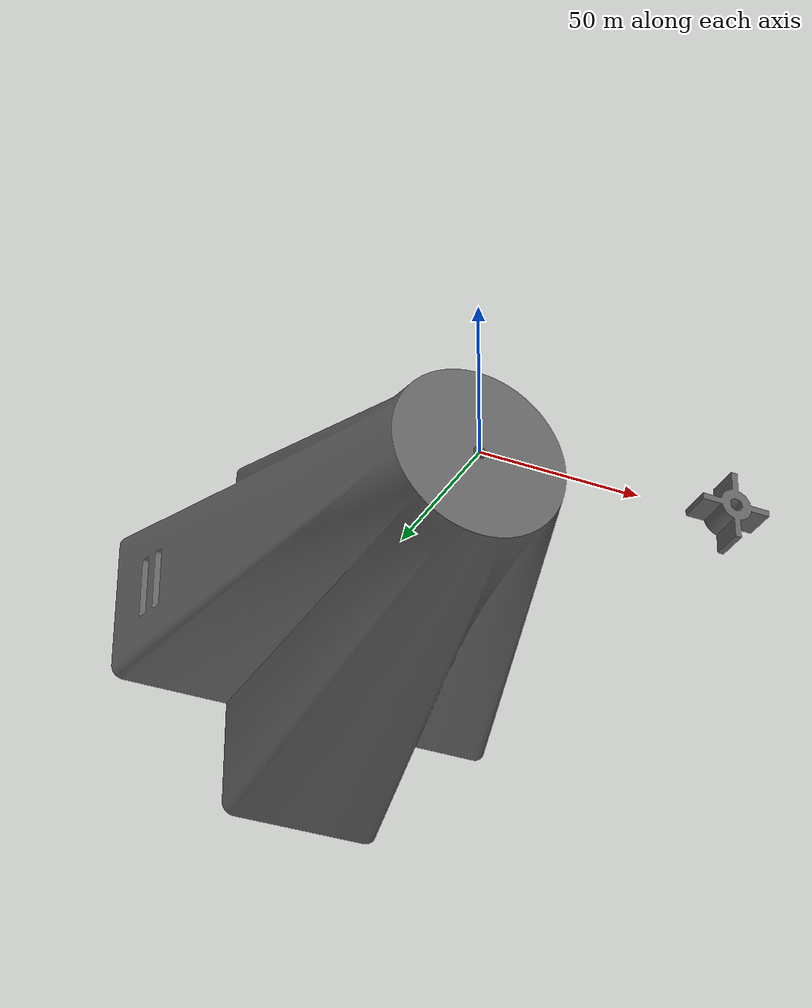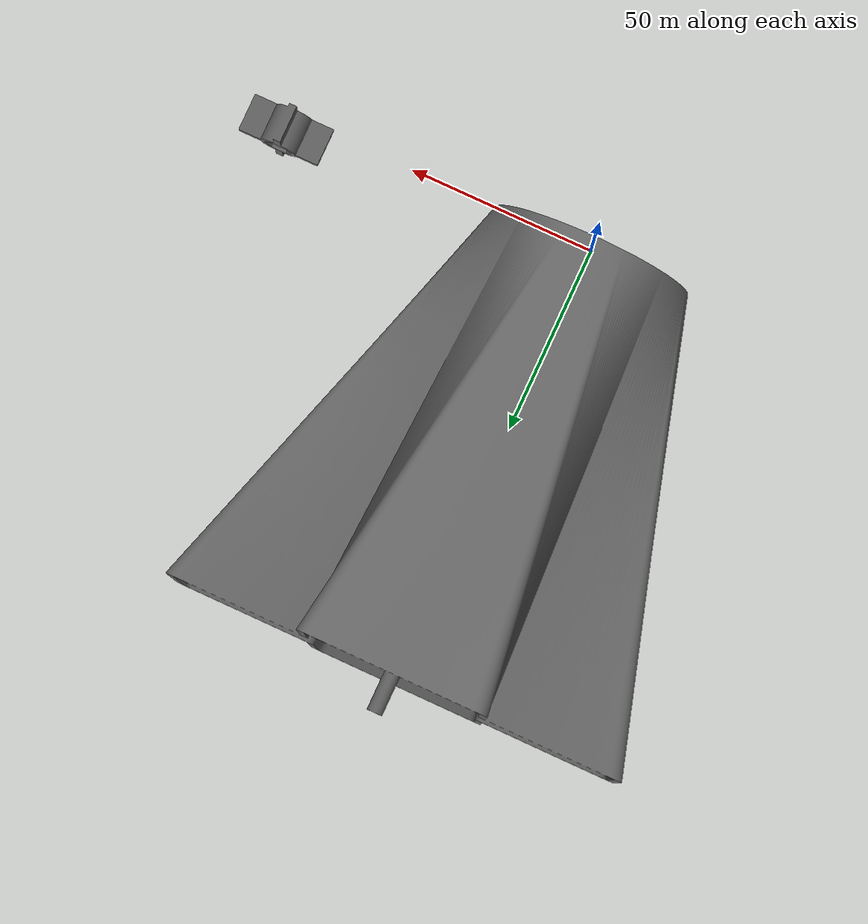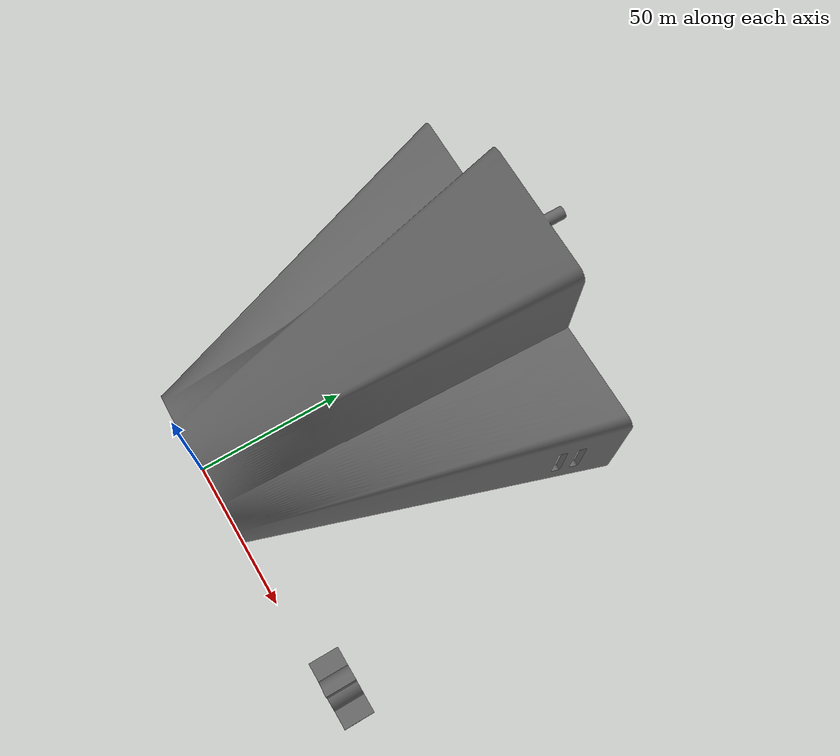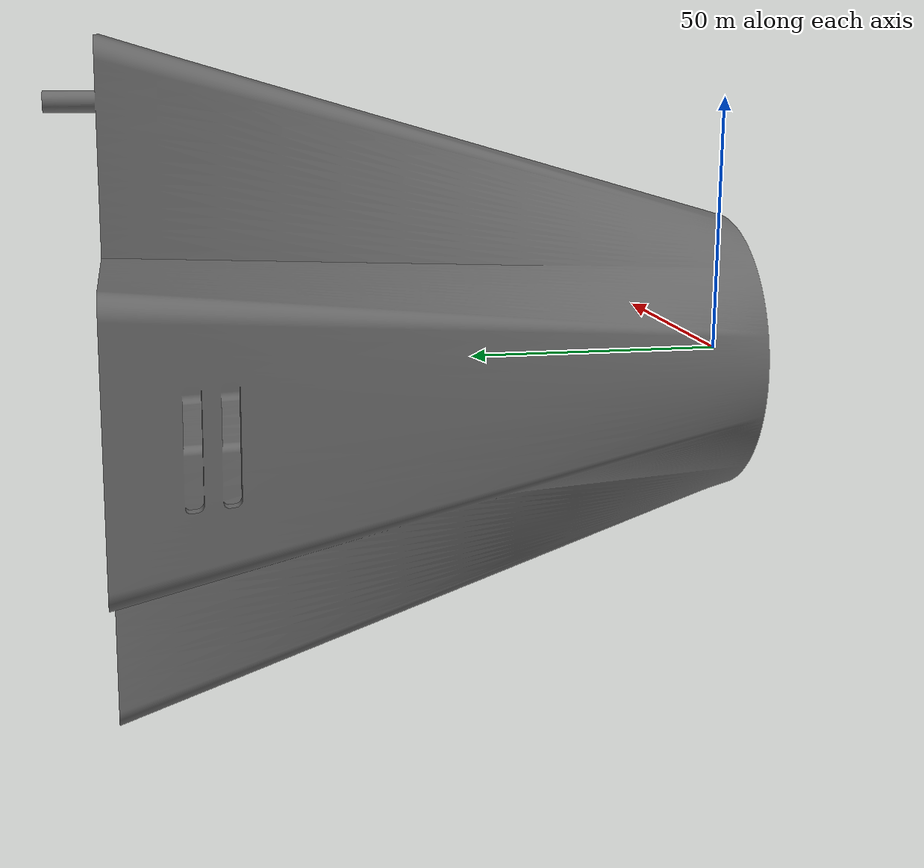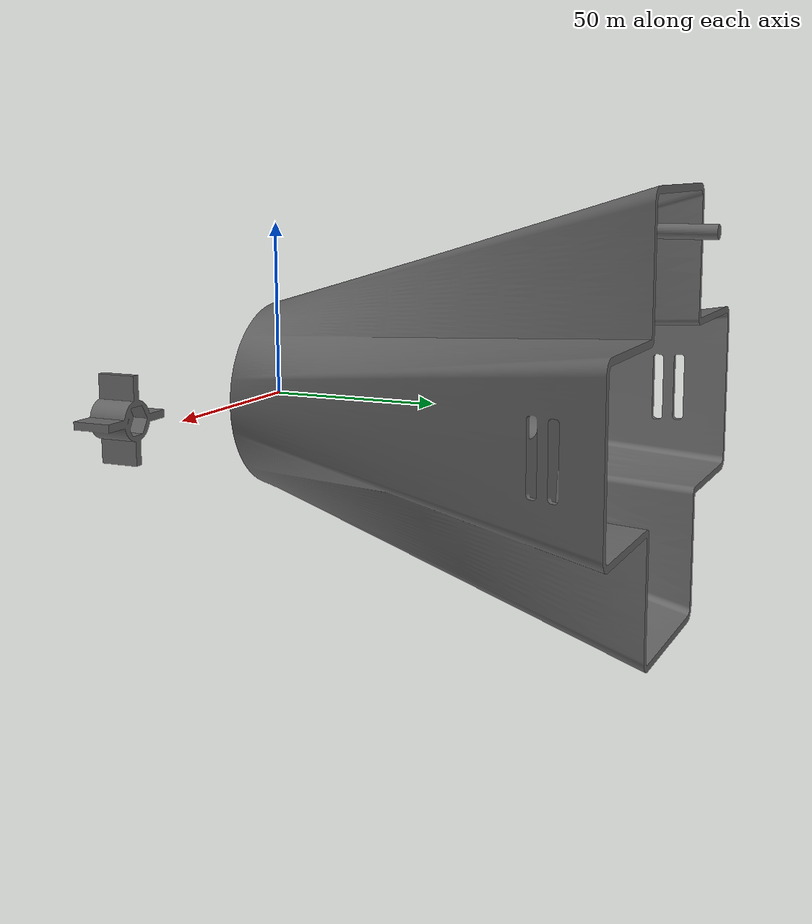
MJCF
<mujoco model="d8563064e64d45459b86281613ea4732">
  <default>
    <default class="visual">
      <geom group="2" type="mesh" contype="0" conaffinity="0"/>
    </default>
    <default class="collision">
      <geom group="3" type="mesh"/>
    </default>
  </default>
  <asset>
    <material name="Scene_-_Root" specular="0.4000000000000001" shininess="0.001" rgba="0.40000000 0.40000000 0.40000000 1.0"/>
    <mesh file="d8563064e64d45459b86281613ea4732.obj"/>
    <mesh file="d8563064e64d45459b86281613ea4732_collision_0.obj"/>
    <mesh file="d8563064e64d45459b86281613ea4732_collision_1.obj"/>
    <mesh file="d8563064e64d45459b86281613ea4732_collision_2.obj"/>
    <mesh file="d8563064e64d45459b86281613ea4732_collision_3.obj"/>
    <mesh file="d8563064e64d45459b86281613ea4732_collision_4.obj"/>
    <mesh file="d8563064e64d45459b86281613ea4732_collision_5.obj"/>
    <mesh file="d8563064e64d45459b86281613ea4732_collision_6.obj"/>
    <mesh file="d8563064e64d45459b86281613ea4732_collision_7.obj"/>
    <mesh file="d8563064e64d45459b86281613ea4732_collision_8.obj"/>
    <mesh file="d8563064e64d45459b86281613ea4732_collision_9.obj"/>
    <mesh file="d8563064e64d45459b86281613ea4732_collision_10.obj"/>
    <mesh file="d8563064e64d45459b86281613ea4732_collision_11.obj"/>
    <mesh file="d8563064e64d45459b86281613ea4732_collision_12.obj"/>
    <mesh file="d8563064e64d45459b86281613ea4732_collision_13.obj"/>
    <mesh file="d8563064e64d45459b86281613ea4732_collision_14.obj"/>
    <mesh file="d8563064e64d45459b86281613ea4732_collision_15.obj"/>
    <mesh file="d8563064e64d45459b86281613ea4732_collision_16.obj"/>
    <mesh file="d8563064e64d45459b86281613ea4732_collision_17.obj"/>
    <mesh file="d8563064e64d45459b86281613ea4732_collision_18.obj"/>
    <mesh file="d8563064e64d45459b86281613ea4732_collision_19.obj"/>
    <mesh file="d8563064e64d45459b86281613ea4732_collision_20.obj"/>
    <mesh file="d8563064e64d45459b86281613ea4732_collision_21.obj"/>
    <mesh file="d8563064e64d45459b86281613ea4732_collision_22.obj"/>
    <mesh file="d8563064e64d45459b86281613ea4732_collision_23.obj"/>
    <mesh file="d8563064e64d45459b86281613ea4732_collision_24.obj"/>
    <mesh file="d8563064e64d45459b86281613ea4732_collision_25.obj"/>
    <mesh file="d8563064e64d45459b86281613ea4732_collision_26.obj"/>
    <mesh file="d8563064e64d45459b86281613ea4732_collision_27.obj"/>
    <mesh file="d8563064e64d45459b86281613ea4732_collision_28.obj"/>
    <mesh file="d8563064e64d45459b86281613ea4732_collision_29.obj"/>
    <mesh file="d8563064e64d45459b86281613ea4732_collision_30.obj"/>
    <mesh file="d8563064e64d45459b86281613ea4732_collision_31.obj"/>
    <mesh file="d8563064e64d45459b86281613ea4732_collision_32.obj"/>
    <mesh file="d8563064e64d45459b86281613ea4732_collision_33.obj"/>
    <mesh file="d8563064e64d45459b86281613ea4732_collision_34.obj"/>
    <mesh file="d8563064e64d45459b86281613ea4732_collision_35.obj"/>
    <mesh file="d8563064e64d45459b86281613ea4732_collision_36.obj"/>
    <mesh file="d8563064e64d45459b86281613ea4732_collision_37.obj"/>
    <mesh file="d8563064e64d45459b86281613ea4732_collision_38.obj"/>
    <mesh file="d8563064e64d45459b86281613ea4732_collision_39.obj"/>
    <mesh file="d8563064e64d45459b86281613ea4732_collision_40.obj"/>
    <mesh file="d8563064e64d45459b86281613ea4732_collision_41.obj"/>
    <mesh file="d8563064e64d45459b86281613ea4732_collision_42.obj"/>
    <mesh file="d8563064e64d45459b86281613ea4732_collision_43.obj"/>
    <mesh file="d8563064e64d45459b86281613ea4732_collision_44.obj"/>
  </asset>
  <worldbody>
    <body name="d8563064e64d45459b86281613ea4732">
      <freejoint/>
      <geom material="Scene_-_Root" mesh="d8563064e64d45459b86281613ea4732" class="visual"/>
      <geom mesh="d8563064e64d45459b86281613ea4732_collision_0" rgba="0.5858512195036748 0.8275308615433904 0.27318867630689825 1" class="collision"/>
      <geom mesh="d8563064e64d45459b86281613ea4732_collision_1" rgba="0.6313505828177516 0.2041789884246854 0.5107857580065333 1" class="collision"/>
      <geom mesh="d8563064e64d45459b86281613ea4732_collision_2" rgba="0.5622332344429314 0.1865418043481778 0.12830920164884707 1" class="collision"/>
      <geom mesh="d8563064e64d45459b86281613ea4732_collision_3" rgba="0.6012529625148351 0.8729558612240853 0.5016525390100853 1" class="collision"/>
      <geom mesh="d8563064e64d45459b86281613ea4732_collision_4" rgba="0.4295475871251557 0.8035506606899093 0.8208101331365336 1" class="collision"/>
      <geom mesh="d8563064e64d45459b86281613ea4732_collision_5" rgba="0.73453442912904 0.22534982462346664 0.3097208033209611 1" class="collision"/>
      <geom mesh="d8563064e64d45459b86281613ea4732_collision_6" rgba="0.08826268161229067 0.7451075463668605 0.9347916027416096 1" class="collision"/>
      <geom mesh="d8563064e64d45459b86281613ea4732_collision_7" rgba="0.9905124689456087 0.66559993979323 0.4761585514245581 1" class="collision"/>
      <geom mesh="d8563064e64d45459b86281613ea4732_collision_8" rgba="0.1332903077541755 0.3412480958936738 0.3776235396282961 1" class="collision"/>
      <geom mesh="d8563064e64d45459b86281613ea4732_collision_9" rgba="0.28596666384208835 0.6013820778166549 0.4644998863709332 1" class="collision"/>
      <geom mesh="d8563064e64d45459b86281613ea4732_collision_10" rgba="0.24925567331027965 0.9349124015349957 0.6757513461721942 1" class="collision"/>
      <geom mesh="d8563064e64d45459b86281613ea4732_collision_11" rgba="0.038388279462380326 0.9333072287162606 0.3103503019140772 1" class="collision"/>
      <geom mesh="d8563064e64d45459b86281613ea4732_collision_12" rgba="0.5238651006804826 0.866250589525182 0.25269108450021216 1" class="collision"/>
      <geom mesh="d8563064e64d45459b86281613ea4732_collision_13" rgba="0.5974890708362929 0.5652790025198028 0.9469603978278843 1" class="collision"/>
      <geom mesh="d8563064e64d45459b86281613ea4732_collision_14" rgba="0.06732752376805817 0.28831143154743877 0.8667839957793673 1" class="collision"/>
      <geom mesh="d8563064e64d45459b86281613ea4732_collision_15" rgba="0.7296622087759732 0.4964000524760094 0.7781644856169087 1" class="collision"/>
      <geom mesh="d8563064e64d45459b86281613ea4732_collision_16" rgba="0.6200082149055579 0.9659968293328977 0.594238114327771 1" class="collision"/>
      <geom mesh="d8563064e64d45459b86281613ea4732_collision_17" rgba="0.1137665278836848 0.2294859578150572 0.34887837702208 1" class="collision"/>
      <geom mesh="d8563064e64d45459b86281613ea4732_collision_18" rgba="0.2537132195113433 0.5556156239131622 0.2187339271580112 1" class="collision"/>
      <geom mesh="d8563064e64d45459b86281613ea4732_collision_19" rgba="0.9377374749398839 0.40280666884357796 0.35576486378143213 1" class="collision"/>
      <geom mesh="d8563064e64d45459b86281613ea4732_collision_20" rgba="0.5393192509329329 0.45922984858353566 0.07601496705663202 1" class="collision"/>
      <geom mesh="d8563064e64d45459b86281613ea4732_collision_21" rgba="0.7470071477265009 0.8250880729083385 0.2888243898185735 1" class="collision"/>
      <geom mesh="d8563064e64d45459b86281613ea4732_collision_22" rgba="0.7815638913088025 0.6388840815060589 0.9549623688243093 1" class="collision"/>
      <geom mesh="d8563064e64d45459b86281613ea4732_collision_23" rgba="0.8540579775844812 0.5625588707413195 0.241053443746166 1" class="collision"/>
      <geom mesh="d8563064e64d45459b86281613ea4732_collision_24" rgba="0.23132695725300711 0.13703737519262926 0.03593316534497337 1" class="collision"/>
      <geom mesh="d8563064e64d45459b86281613ea4732_collision_25" rgba="0.20573773741016255 0.11894296643837288 0.23127773613549218 1" class="collision"/>
      <geom mesh="d8563064e64d45459b86281613ea4732_collision_26" rgba="0.43391827748820866 0.765205684949288 0.7784700338032658 1" class="collision"/>
      <geom mesh="d8563064e64d45459b86281613ea4732_collision_27" rgba="0.5340840858585898 0.2649846199739012 0.6713518148265646 1" class="collision"/>
      <geom mesh="d8563064e64d45459b86281613ea4732_collision_28" rgba="0.48252848458598974 0.5877600917426501 0.5966956265223707 1" class="collision"/>
      <geom mesh="d8563064e64d45459b86281613ea4732_collision_29" rgba="0.17220422217628262 0.8072371225556705 0.20629306884569898 1" class="collision"/>
      <geom mesh="d8563064e64d45459b86281613ea4732_collision_30" rgba="0.7504855994921105 0.06794104794700373 0.5541564099491881 1" class="collision"/>
      <geom mesh="d8563064e64d45459b86281613ea4732_collision_31" rgba="0.9154580878107133 0.522951328248261 0.587596063112236 1" class="collision"/>
      <geom mesh="d8563064e64d45459b86281613ea4732_collision_32" rgba="0.8914716149621703 0.9357889496540255 0.861163718356296 1" class="collision"/>
      <geom mesh="d8563064e64d45459b86281613ea4732_collision_33" rgba="0.8106127191040619 0.7379019639921157 0.9233882474800522 1" class="collision"/>
      <geom mesh="d8563064e64d45459b86281613ea4732_collision_34" rgba="0.2949957198610138 0.6241385703649565 0.7653726376560744 1" class="collision"/>
      <geom mesh="d8563064e64d45459b86281613ea4732_collision_35" rgba="0.2773024705541086 0.9117419597005931 0.11327032524126535 1" class="collision"/>
      <geom mesh="d8563064e64d45459b86281613ea4732_collision_36" rgba="0.8810401010497828 0.401229858334023 0.9703765623748112 1" class="collision"/>
      <geom mesh="d8563064e64d45459b86281613ea4732_collision_37" rgba="0.5703832548466791 0.05991155021268624 0.4763310088208518 1" class="collision"/>
      <geom mesh="d8563064e64d45459b86281613ea4732_collision_38" rgba="0.6917771620916491 0.9883414554057709 0.17193268141376838 1" class="collision"/>
      <geom mesh="d8563064e64d45459b86281613ea4732_collision_39" rgba="0.6503703880516598 0.8324649295650756 0.35674007581000866 1" class="collision"/>
      <geom mesh="d8563064e64d45459b86281613ea4732_collision_40" rgba="0.46888584674682143 0.04483111006461338 0.321380489556619 1" class="collision"/>
      <geom mesh="d8563064e64d45459b86281613ea4732_collision_41" rgba="0.3399780328906049 0.928128895770196 0.43250804982863966 1" class="collision"/>
      <geom mesh="d8563064e64d45459b86281613ea4732_collision_42" rgba="0.04041742077915744 0.5149072250678143 0.5526780452412957 1" class="collision"/>
      <geom mesh="d8563064e64d45459b86281613ea4732_collision_43" rgba="0.7640088168679453 0.842105097187167 0.0897159414528339 1" class="collision"/>
      <geom mesh="d8563064e64d45459b86281613ea4732_collision_44" rgba="0.774290807779567 0.8244849564646843 0.5005266108527178 1" class="collision"/>
    </body>
  </worldbody>
</mujoco>
